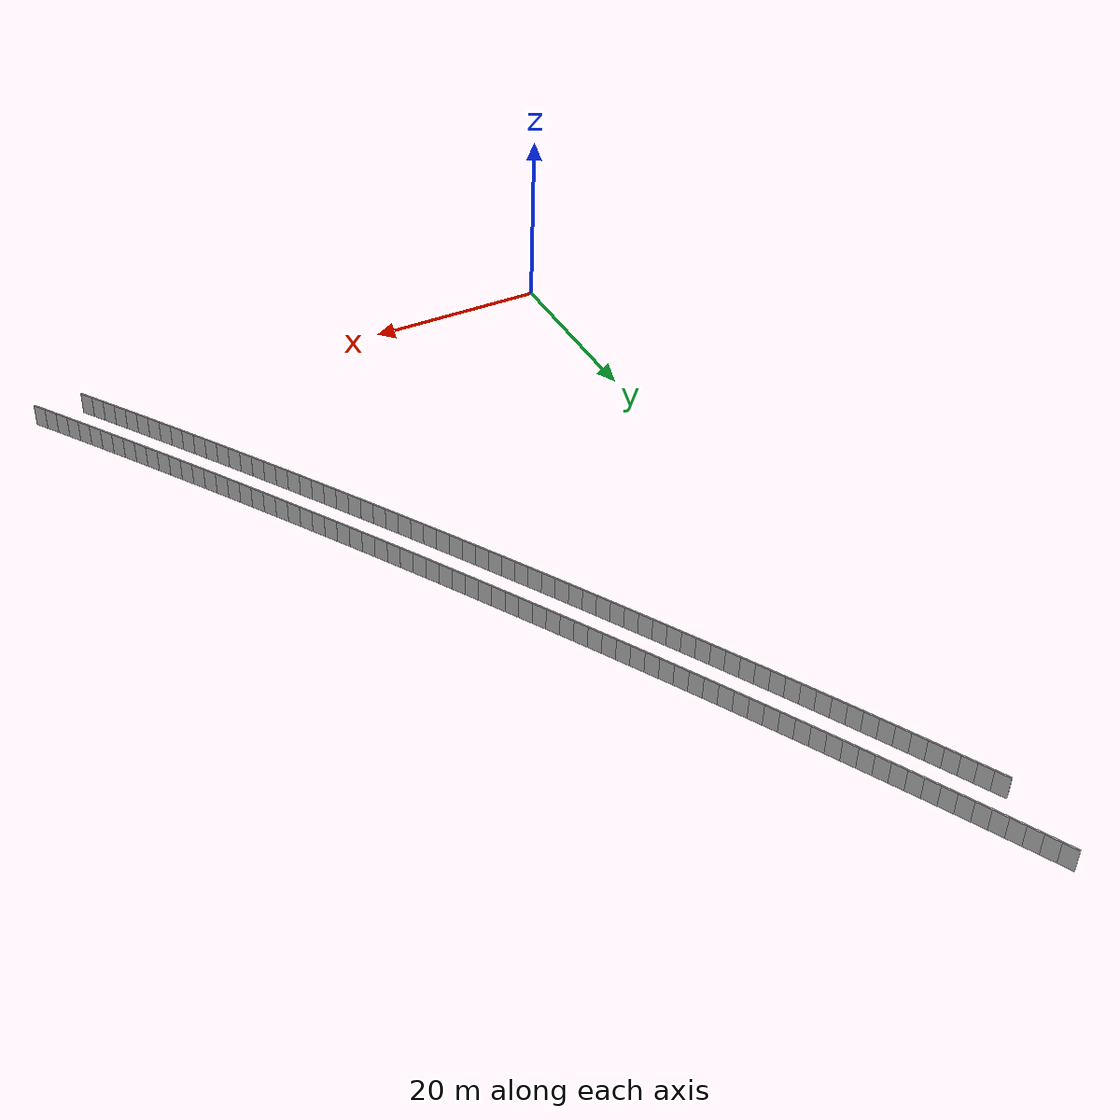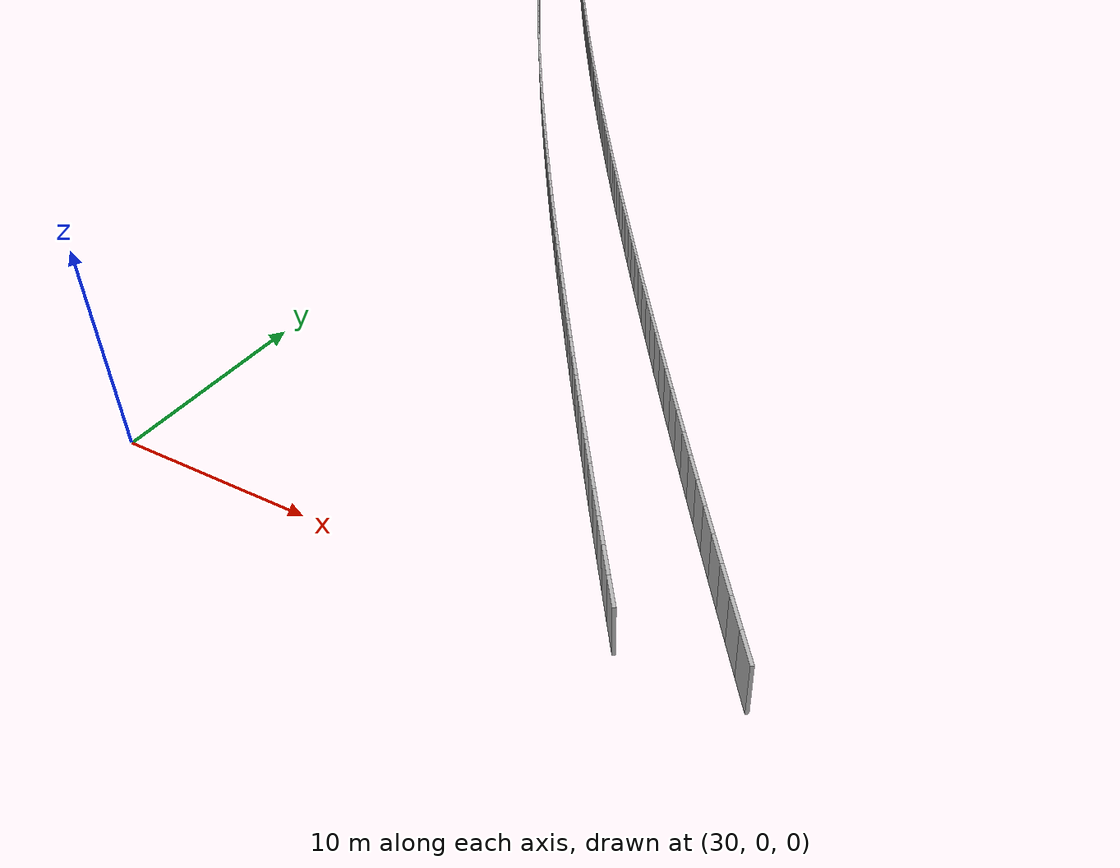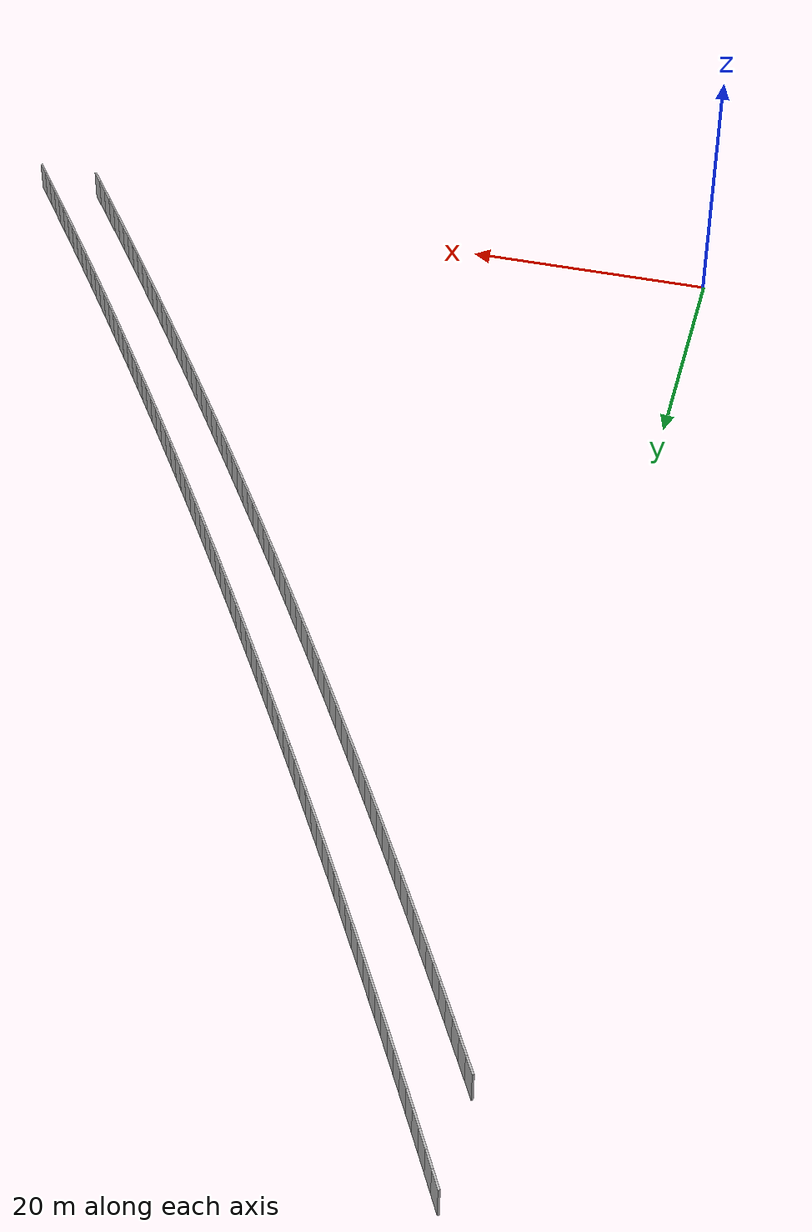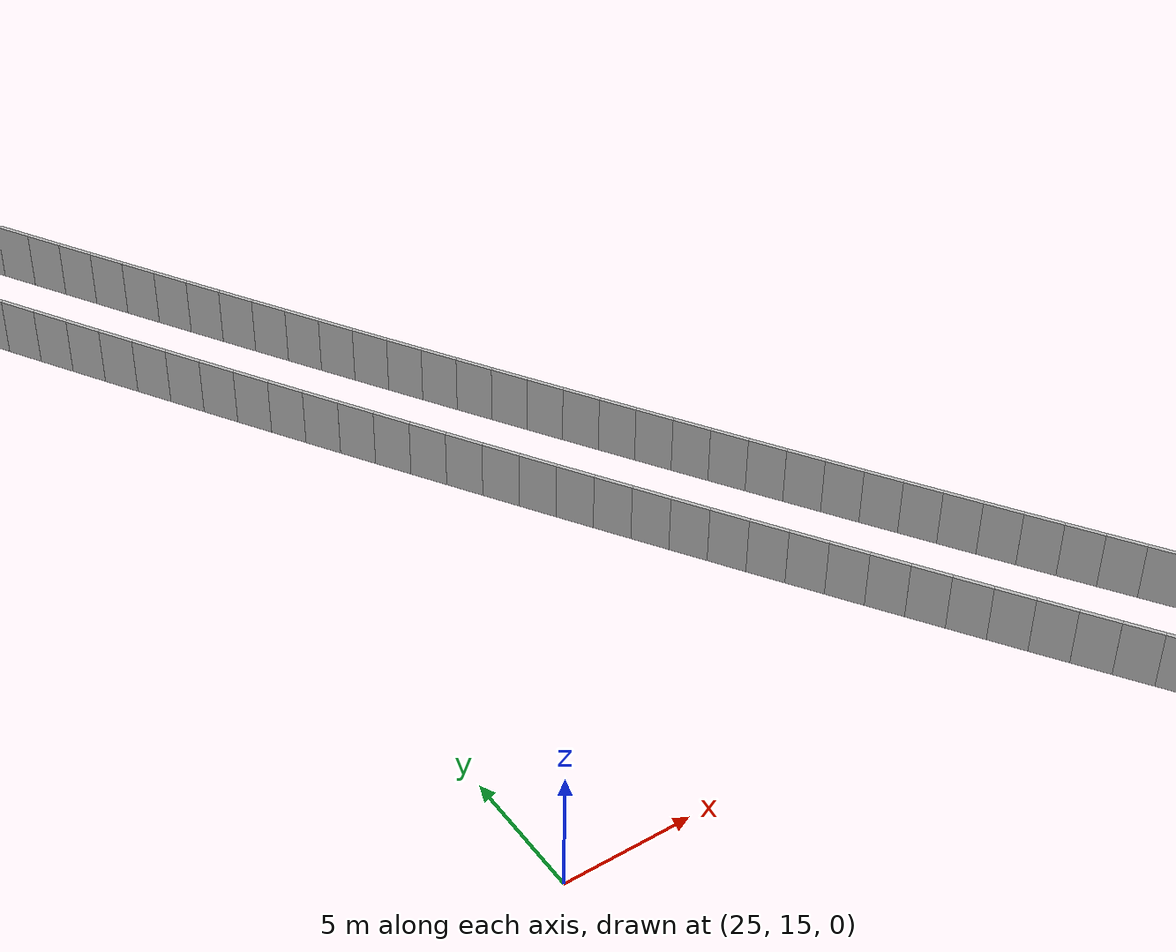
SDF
<sdf version="1.6">
 <model name="sps_0306">
  <static>1</static>
  <allow_auto_disable>0</allow_auto_disable>
  <link name="Wall8372">
   <collision name="collision"><geometry><box><size>1.49884 0.15 2.5</size></box></geometry></collision>
   <visual name="visual">
    <geometry><box><size>1.49884 0.15 2.5</size></box></geometry>
    <transparency>0.0</transparency>
   </visual>
   <pose>0.592246 86.9346 1.25 0 0 -1.0703</pose>
  </link>
  <link name="Wall8373">
   <collision name="collision"><geometry><box><size>1.49901 0.15 2.5</size></box></geometry></collision>
   <visual name="visual">
    <geometry><box><size>1.49901 0.15 2.5</size></box></geometry>
    <transparency>0.0</transparency>
   </visual>
   <pose>1.31255 85.6201 1.25 0 0 -1.06874</pose>
  </link>
  <link name="Wall8374">
   <collision name="collision"><geometry><box><size>1.49908 0.15 2.5</size></box></geometry></collision>
   <visual name="visual">
    <geometry><box><size>1.49908 0.15 2.5</size></box></geometry>
    <transparency>0.0</transparency>
   </visual>
   <pose>2.03493 84.3066 1.25 0 0 -1.06723</pose>
  </link>
  <link name="Wall8375">
   <collision name="collision"><geometry><box><size>1.49903 0.15 2.5</size></box></geometry></collision>
   <visual name="visual">
    <geometry><box><size>1.49903 0.15 2.5</size></box></geometry>
    <transparency>0.0</transparency>
   </visual>
   <pose>2.75933 82.9942 1.25 0 0 -1.06568</pose>
  </link>
  <link name="Wall8376">
   <collision name="collision"><geometry><box><size>1.49894 0.15 2.5</size></box></geometry></collision>
   <visual name="visual">
    <geometry><box><size>1.49894 0.15 2.5</size></box></geometry>
    <transparency>0.0</transparency>
   </visual>
   <pose>3.48574 81.683 1.25 0 0 -1.06411</pose>
  </link>
  <link name="Wall8377">
   <collision name="collision"><geometry><box><size>1.49894 0.15 2.5</size></box></geometry></collision>
   <visual name="visual">
    <geometry><box><size>1.49894 0.15 2.5</size></box></geometry>
    <transparency>0.0</transparency>
   </visual>
   <pose>4.21426 80.373 1.25 0 0 -1.06243</pose>
  </link>
  <link name="Wall8378">
   <collision name="collision"><geometry><box><size>1.49883 0.15 2.5</size></box></geometry></collision>
   <visual name="visual">
    <geometry><box><size>1.49883 0.15 2.5</size></box></geometry>
    <transparency>0.0</transparency>
   </visual>
   <pose>4.94485 79.0642 1.25 0 0 -1.06089</pose>
  </link>
  <link name="Wall8379">
   <collision name="collision"><geometry><box><size>1.49901 0.15 2.5</size></box></geometry></collision>
   <visual name="visual">
    <geometry><box><size>1.49901 0.15 2.5</size></box></geometry>
    <transparency>0.0</transparency>
   </visual>
   <pose>5.67763 77.7566 1.25 0 0 -1.05909</pose>
  </link>
  <link name="Wall8380">
   <collision name="collision"><geometry><box><size>1.49906 0.15 2.5</size></box></geometry></collision>
   <visual name="visual">
    <geometry><box><size>1.49906 0.15 2.5</size></box></geometry>
    <transparency>0.0</transparency>
   </visual>
   <pose>6.41256 76.4501 1.25 0 0 -1.05771</pose>
  </link>
  <link name="Wall8381">
   <collision name="collision"><geometry><box><size>1.49905 0.15 2.5</size></box></geometry></collision>
   <visual name="visual">
    <geometry><box><size>1.49905 0.15 2.5</size></box></geometry>
    <transparency>0.0</transparency>
   </visual>
   <pose>7.14947 75.1447 1.25 0 0 -1.05607</pose>
  </link>
  <link name="Wall8382">
   <collision name="collision"><geometry><box><size>1.49867 0.15 2.5</size></box></geometry></collision>
   <visual name="visual">
    <geometry><box><size>1.49867 0.15 2.5</size></box></geometry>
    <transparency>0.0</transparency>
   </visual>
   <pose>7.88836 73.8406 1.25 0 0 -1.05452</pose>
  </link>
  <link name="Wall8383">
   <collision name="collision"><geometry><box><size>1.49896 0.15 2.5</size></box></geometry></collision>
   <visual name="visual">
    <geometry><box><size>1.49896 0.15 2.5</size></box></geometry>
    <transparency>0.0</transparency>
   </visual>
   <pose>8.62926 72.5377 1.25 0 0 -1.05295</pose>
  </link>
  <link name="Wall8384">
   <collision name="collision"><geometry><box><size>1.4989 0.15 2.5</size></box></geometry></collision>
   <visual name="visual">
    <geometry><box><size>1.4989 0.15 2.5</size></box></geometry>
    <transparency>0.0</transparency>
   </visual>
   <pose>9.37228 71.2359 1.25 0 0 -1.05138</pose>
  </link>
  <link name="Wall8385">
   <collision name="collision"><geometry><box><size>1.49906 0.15 2.5</size></box></geometry></collision>
   <visual name="visual">
    <geometry><box><size>1.49906 0.15 2.5</size></box></geometry>
    <transparency>0.0</transparency>
   </visual>
   <pose>10.1174 69.9352 1.25 0 0 -1.0498</pose>
  </link>
  <link name="Wall8386">
   <collision name="collision"><geometry><box><size>1.49881 0.15 2.5</size></box></geometry></collision>
   <visual name="visual">
    <geometry><box><size>1.49881 0.15 2.5</size></box></geometry>
    <transparency>0.0</transparency>
   </visual>
   <pose>10.8644 68.6357 1.25 0 0 -1.04829</pose>
  </link>
  <link name="Wall8387">
   <collision name="collision"><geometry><box><size>1.49904 0.15 2.5</size></box></geometry></collision>
   <visual name="visual">
    <geometry><box><size>1.49904 0.15 2.5</size></box></geometry>
    <transparency>0.0</transparency>
   </visual>
   <pose>11.6135 67.3374 1.25 0 0 -1.04664</pose>
  </link>
  <link name="Wall8388">
   <collision name="collision"><geometry><box><size>1.49881 0.15 2.5</size></box></geometry></collision>
   <visual name="visual">
    <geometry><box><size>1.49881 0.15 2.5</size></box></geometry>
    <transparency>0.0</transparency>
   </visual>
   <pose>12.3648 66.0403 1.25 0 0 -1.04504</pose>
  </link>
  <link name="Wall8389">
   <collision name="collision"><geometry><box><size>1.49907 0.15 2.5</size></box></geometry></collision>
   <visual name="visual">
    <geometry><box><size>1.49907 0.15 2.5</size></box></geometry>
    <transparency>0.0</transparency>
   </visual>
   <pose>13.1181 64.7444 1.25 0 0 -1.04345</pose>
  </link>
  <link name="Wall8390">
   <collision name="collision"><geometry><box><size>1.49903 0.15 2.5</size></box></geometry></collision>
   <visual name="visual">
    <geometry><box><size>1.49903 0.15 2.5</size></box></geometry>
    <transparency>0.0</transparency>
   </visual>
   <pose>13.8735 63.4496 1.25 0 0 -1.04188</pose>
  </link>
  <link name="Wall8391">
   <collision name="collision"><geometry><box><size>1.4988 0.15 2.5</size></box></geometry></collision>
   <visual name="visual">
    <geometry><box><size>1.4988 0.15 2.5</size></box></geometry>
    <transparency>0.0</transparency>
   </visual>
   <pose>14.6309 62.1561 1.25 0 0 -1.04028</pose>
  </link>
  <link name="Wall8392">
   <collision name="collision"><geometry><box><size>1.49901 0.15 2.5</size></box></geometry></collision>
   <visual name="visual">
    <geometry><box><size>1.49901 0.15 2.5</size></box></geometry>
    <transparency>0.0</transparency>
   </visual>
   <pose>15.3903 60.8638 1.25 0 0 -1.03876</pose>
  </link>
  <link name="Wall8393">
   <collision name="collision"><geometry><box><size>1.49905 0.15 2.5</size></box></geometry></collision>
   <visual name="visual">
    <geometry><box><size>1.49905 0.15 2.5</size></box></geometry>
    <transparency>0.0</transparency>
   </visual>
   <pose>16.1518 59.5726 1.25 0 0 -1.03712</pose>
  </link>
  <link name="Wall8394">
   <collision name="collision"><geometry><box><size>1.49861 0.15 2.5</size></box></geometry></collision>
   <visual name="visual">
    <geometry><box><size>1.49861 0.15 2.5</size></box></geometry>
    <transparency>0.0</transparency>
   </visual>
   <pose>16.9152 58.2828 1.25 0 0 -1.03552</pose>
  </link>
  <link name="Wall8395">
   <collision name="collision"><geometry><box><size>1.49896 0.15 2.5</size></box></geometry></collision>
   <visual name="visual">
    <geometry><box><size>1.49896 0.15 2.5</size></box></geometry>
    <transparency>0.0</transparency>
   </visual>
   <pose>17.6807 56.9942 1.25 0 0 -1.0341</pose>
  </link>
  <link name="Wall8396">
   <collision name="collision"><geometry><box><size>1.49888 0.15 2.5</size></box></geometry></collision>
   <visual name="visual">
    <geometry><box><size>1.49888 0.15 2.5</size></box></geometry>
    <transparency>0.0</transparency>
   </visual>
   <pose>18.4482 55.7067 1.25 0 0 -1.03236</pose>
  </link>
  <link name="Wall8397">
   <collision name="collision"><geometry><box><size>1.49904 0.15 2.5</size></box></geometry></collision>
   <visual name="visual">
    <geometry><box><size>1.49904 0.15 2.5</size></box></geometry>
    <transparency>0.0</transparency>
   </visual>
   <pose>19.2178 54.4204 1.25 0 0 -1.03091</pose>
  </link>
  <link name="Wall8398">
   <collision name="collision"><geometry><box><size>1.49882 0.15 2.5</size></box></geometry></collision>
   <visual name="visual">
    <geometry><box><size>1.49882 0.15 2.5</size></box></geometry>
    <transparency>0.0</transparency>
   </visual>
   <pose>19.9893 53.1353 1.25 0 0 -1.02925</pose>
  </link>
  <link name="Wall8399">
   <collision name="collision"><geometry><box><size>1.499 0.15 2.5</size></box></geometry></collision>
   <visual name="visual">
    <geometry><box><size>1.499 0.15 2.5</size></box></geometry>
    <transparency>0.0</transparency>
   </visual>
   <pose>20.7631 51.8515 1.25 0 0 -1.02756</pose>
  </link>
  <link name="Wall8400">
   <collision name="collision"><geometry><box><size>1.49892 0.15 2.5</size></box></geometry></collision>
   <visual name="visual">
    <geometry><box><size>1.49892 0.15 2.5</size></box></geometry>
    <transparency>0.0</transparency>
   </visual>
   <pose>21.5388 50.5689 1.25 0 0 -1.02615</pose>
  </link>
  <link name="Wall8401">
   <collision name="collision"><geometry><box><size>1.49893 0.15 2.5</size></box></geometry></collision>
   <visual name="visual">
    <geometry><box><size>1.49893 0.15 2.5</size></box></geometry>
    <transparency>0.0</transparency>
   </visual>
   <pose>22.3165 49.2875 1.25 0 0 -1.02449</pose>
  </link>
  <link name="Wall8402">
   <collision name="collision"><geometry><box><size>1.49887 0.15 2.5</size></box></geometry></collision>
   <visual name="visual">
    <geometry><box><size>1.49887 0.15 2.5</size></box></geometry>
    <transparency>0.0</transparency>
   </visual>
   <pose>23.0962 48.0074 1.25 0 0 -1.02284</pose>
  </link>
  <link name="Wall8403">
   <collision name="collision"><geometry><box><size>1.49921 0.15 2.5</size></box></geometry></collision>
   <visual name="visual">
    <geometry><box><size>1.49921 0.15 2.5</size></box></geometry>
    <transparency>0.0</transparency>
   </visual>
   <pose>23.878 46.7284 1.25 0 0 -1.02145</pose>
  </link>
  <link name="Wall8404">
   <collision name="collision"><geometry><box><size>1.49876 0.15 2.5</size></box></geometry></collision>
   <visual name="visual">
    <geometry><box><size>1.49876 0.15 2.5</size></box></geometry>
    <transparency>0.0</transparency>
   </visual>
   <pose>24.6617 45.4506 1.25 0 0 -1.01984</pose>
  </link>
  <link name="Wall8405">
   <collision name="collision"><geometry><box><size>1.49892 0.15 2.5</size></box></geometry></collision>
   <visual name="visual">
    <geometry><box><size>1.49892 0.15 2.5</size></box></geometry>
    <transparency>0.0</transparency>
   </visual>
   <pose>25.4474 44.1742 1.25 0 0 -1.01818</pose>
  </link>
  <link name="Wall8406">
   <collision name="collision"><geometry><box><size>1.49904 0.15 2.5</size></box></geometry></collision>
   <visual name="visual">
    <geometry><box><size>1.49904 0.15 2.5</size></box></geometry>
    <transparency>0.0</transparency>
   </visual>
   <pose>26.2353 42.899 1.25 0 0 -1.01651</pose>
  </link>
  <link name="Wall8407">
   <collision name="collision"><geometry><box><size>1.49897 0.15 2.5</size></box></geometry></collision>
   <visual name="visual">
    <geometry><box><size>1.49897 0.15 2.5</size></box></geometry>
    <transparency>0.0</transparency>
   </visual>
   <pose>27.0253 41.625 1.25 0 0 -1.01504</pose>
  </link>
  <link name="Wall8408">
   <collision name="collision"><geometry><box><size>1.49901 0.15 2.5</size></box></geometry></collision>
   <visual name="visual">
    <geometry><box><size>1.49901 0.15 2.5</size></box></geometry>
    <transparency>0.0</transparency>
   </visual>
   <pose>27.8171 40.3522 1.25 0 0 -1.01353</pose>
  </link>
  <link name="Wall8409">
   <collision name="collision"><geometry><box><size>1.49889 0.15 2.5</size></box></geometry></collision>
   <visual name="visual">
    <geometry><box><size>1.49889 0.15 2.5</size></box></geometry>
    <transparency>0.0</transparency>
   </visual>
   <pose>28.6109 39.0807 1.25 0 0 -1.01189</pose>
  </link>
  <link name="Wall8410">
   <collision name="collision"><geometry><box><size>1.49893 0.15 2.5</size></box></geometry></collision>
   <visual name="visual">
    <geometry><box><size>1.49893 0.15 2.5</size></box></geometry>
    <transparency>0.0</transparency>
   </visual>
   <pose>29.4067 37.8105 1.25 0 0 -1.01032</pose>
  </link>
  <link name="Wall8411">
   <collision name="collision"><geometry><box><size>1.49878 0.15 2.5</size></box></geometry></collision>
   <visual name="visual">
    <geometry><box><size>1.49878 0.15 2.5</size></box></geometry>
    <transparency>0.0</transparency>
   </visual>
   <pose>30.2045 36.5416 1.25 0 0 -1.00872</pose>
  </link>
  <link name="Wall8412">
   <collision name="collision"><geometry><box><size>1.49906 0.15 2.5</size></box></geometry></collision>
   <visual name="visual">
    <geometry><box><size>1.49906 0.15 2.5</size></box></geometry>
    <transparency>0.0</transparency>
   </visual>
   <pose>31.0043 35.2739 1.25 0 0 -1.0072</pose>
  </link>
  <link name="Wall8413">
   <collision name="collision"><geometry><box><size>1.49901 0.15 2.5</size></box></geometry></collision>
   <visual name="visual">
    <geometry><box><size>1.49901 0.15 2.5</size></box></geometry>
    <transparency>0.0</transparency>
   </visual>
   <pose>31.8062 34.0074 1.25 0 0 -1.00549</pose>
  </link>
  <link name="Wall8414">
   <collision name="collision"><geometry><box><size>1.49897 0.15 2.5</size></box></geometry></collision>
   <visual name="visual">
    <geometry><box><size>1.49897 0.15 2.5</size></box></geometry>
    <transparency>0.0</transparency>
   </visual>
   <pose>32.6101 32.7422 1.25 0 0 -1.00403</pose>
  </link>
  <link name="Wall8415">
   <collision name="collision"><geometry><box><size>1.49883 0.15 2.5</size></box></geometry></collision>
   <visual name="visual">
    <geometry><box><size>1.49883 0.15 2.5</size></box></geometry>
    <transparency>0.0</transparency>
   </visual>
   <pose>33.4159 31.4783 1.25 0 0 -1.00242</pose>
  </link>
  <link name="Wall8416">
   <collision name="collision"><geometry><box><size>1.49907 0.15 2.5</size></box></geometry></collision>
   <visual name="visual">
    <geometry><box><size>1.49907 0.15 2.5</size></box></geometry>
    <transparency>0.0</transparency>
   </visual>
   <pose>34.2237 30.2157 1.25 0 0 -1.00074</pose>
  </link>
  <link name="Wall8417">
   <collision name="collision"><geometry><box><size>1.4988 0.15 2.5</size></box></geometry></collision>
   <visual name="visual">
    <geometry><box><size>1.4988 0.15 2.5</size></box></geometry>
    <transparency>0.0</transparency>
   </visual>
   <pose>35.0337 28.9544 1.25 0 0 -0.999217</pose>
  </link>
  <link name="Wall8418">
   <collision name="collision"><geometry><box><size>1.49901 0.15 2.5</size></box></geometry></collision>
   <visual name="visual">
    <geometry><box><size>1.49901 0.15 2.5</size></box></geometry>
    <transparency>0.0</transparency>
   </visual>
   <pose>35.8455 27.6944 1.25 0 0 -0.997565</pose>
  </link>
  <link name="Wall8419">
   <collision name="collision"><geometry><box><size>1.49903 0.15 2.5</size></box></geometry></collision>
   <visual name="visual">
    <geometry><box><size>1.49903 0.15 2.5</size></box></geometry>
    <transparency>0.0</transparency>
   </visual>
   <pose>36.6594 26.4356 1.25 0 0 -0.996119</pose>
  </link>
  <link name="Wall8420">
   <collision name="collision"><geometry><box><size>1.49887 0.15 2.5</size></box></geometry></collision>
   <visual name="visual">
    <geometry><box><size>1.49887 0.15 2.5</size></box></geometry>
    <transparency>0.0</transparency>
   </visual>
   <pose>37.4752 25.1781 1.25 0 0 -0.994495</pose>
  </link>
  <link name="Wall8421">
   <collision name="collision"><geometry><box><size>1.49854 0.15 2.5</size></box></geometry></collision>
   <visual name="visual">
    <geometry><box><size>1.49854 0.15 2.5</size></box></geometry>
    <transparency>0.0</transparency>
   </visual>
   <pose>38.2929 23.9221 1.25 0 0 -0.992893</pose>
  </link>
  <link name="Wall8422">
   <collision name="collision"><geometry><box><size>1.49892 0.15 2.5</size></box></geometry></collision>
   <visual name="visual">
    <geometry><box><size>1.49892 0.15 2.5</size></box></geometry>
    <transparency>0.0</transparency>
   </visual>
   <pose>39.1126 22.6674 1.25 0 0 -0.991309</pose>
  </link>
  <link name="Wall8423">
   <collision name="collision"><geometry><box><size>1.4989 0.15 2.5</size></box></geometry></collision>
   <visual name="visual">
    <geometry><box><size>1.4989 0.15 2.5</size></box></geometry>
    <transparency>0.0</transparency>
   </visual>
   <pose>39.9343 21.4138 1.25 0 0 -0.989841</pose>
  </link>
  <link name="Wall8424">
   <collision name="collision"><geometry><box><size>1.4989 0.15 2.5</size></box></geometry></collision>
   <visual name="visual">
    <geometry><box><size>1.4989 0.15 2.5</size></box></geometry>
    <transparency>0.0</transparency>
   </visual>
   <pose>40.758 20.1615 1.25 0 0 -0.988136</pose>
  </link>
  <link name="Wall8425">
   <collision name="collision"><geometry><box><size>1.49908 0.15 2.5</size></box></geometry></collision>
   <visual name="visual">
    <geometry><box><size>1.49908 0.15 2.5</size></box></geometry>
    <transparency>0.0</transparency>
   </visual>
   <pose>41.5839 18.9105 1.25 0 0 -0.986554</pose>
  </link>
  <link name="Wall8426">
   <collision name="collision"><geometry><box><size>1.49885 0.15 2.5</size></box></geometry></collision>
   <visual name="visual">
    <geometry><box><size>1.49885 0.15 2.5</size></box></geometry>
    <transparency>0.0</transparency>
   </visual>
   <pose>42.4116 17.6608 1.25 0 0 -0.985086</pose>
  </link>
  <link name="Wall8427">
   <collision name="collision"><geometry><box><size>1.49888 0.15 2.5</size></box></geometry></collision>
   <visual name="visual">
    <geometry><box><size>1.49888 0.15 2.5</size></box></geometry>
    <transparency>0.0</transparency>
   </visual>
   <pose>43.2412 16.4125 1.25 0 0 -0.983291</pose>
  </link>
  <link name="Wall8428">
   <collision name="collision"><geometry><box><size>1.49893 0.15 2.5</size></box></geometry></collision>
   <visual name="visual">
    <geometry><box><size>1.49893 0.15 2.5</size></box></geometry>
    <transparency>0.0</transparency>
   </visual>
   <pose>44.073 15.1655 1.25 0 0 -0.981845</pose>
  </link>
  <link name="Wall8429">
   <collision name="collision"><geometry><box><size>1.49906 0.15 2.5</size></box></geometry></collision>
   <visual name="visual">
    <geometry><box><size>1.49906 0.15 2.5</size></box></geometry>
    <transparency>0.0</transparency>
   </visual>
   <pose>44.9066 13.9197 1.25 0 0 -0.980332</pose>
  </link>
  <link name="Wall8430">
   <collision name="collision"><geometry><box><size>1.49881 0.15 2.5</size></box></geometry></collision>
   <visual name="visual">
    <geometry><box><size>1.49881 0.15 2.5</size></box></geometry>
    <transparency>0.0</transparency>
   </visual>
   <pose>45.7422 12.6753 1.25 0 0 -0.978604</pose>
  </link>
  <link name="Wall8431">
   <collision name="collision"><geometry><box><size>1.49924 0.15 2.5</size></box></geometry></collision>
   <visual name="visual">
    <geometry><box><size>1.49924 0.15 2.5</size></box></geometry>
    <transparency>0.0</transparency>
   </visual>
   <pose>46.5798 11.4321 1.25 0 0 -0.977227</pose>
  </link>
  <link name="Wall8432">
   <collision name="collision"><geometry><box><size>1.49895 0.15 2.5</size></box></geometry></collision>
   <visual name="visual">
    <geometry><box><size>1.49895 0.15 2.5</size></box></geometry>
    <transparency>0.0</transparency>
   </visual>
   <pose>47.4192 10.1901 1.25 0 0 -0.975622</pose>
  </link>
  <link name="Wall8433">
   <collision name="collision"><geometry><box><size>1.49903 0.15 2.5</size></box></geometry></collision>
   <visual name="visual">
    <geometry><box><size>1.49903 0.15 2.5</size></box></geometry>
    <transparency>0.0</transparency>
   </visual>
   <pose>48.2607 8.94957 1.25 0 0 -0.973884</pose>
  </link>
  <link name="Wall8434">
   <collision name="collision"><geometry><box><size>1.49885 0.15 2.5</size></box></geometry></collision>
   <visual name="visual">
    <geometry><box><size>1.49885 0.15 2.5</size></box></geometry>
    <transparency>0.0</transparency>
   </visual>
   <pose>49.1042 7.71049 1.25 0 0 -0.972324</pose>
  </link>
  <link name="Wall8435">
   <collision name="collision"><geometry><box><size>1.49894 0.15 2.5</size></box></geometry></collision>
   <visual name="visual">
    <geometry><box><size>1.49894 0.15 2.5</size></box></geometry>
    <transparency>0.0</transparency>
   </visual>
   <pose>49.9495 6.4727 1.25 0 0 -0.970935</pose>
  </link>
  <link name="Wall8436">
   <collision name="collision"><geometry><box><size>1.49897 0.15 2.5</size></box></geometry></collision>
   <visual name="visual">
    <geometry><box><size>1.49897 0.15 2.5</size></box></geometry>
    <transparency>0.0</transparency>
   </visual>
   <pose>50.7968 5.23619 1.25 0 0 -0.969174</pose>
  </link>
  <link name="Wall8437">
   <collision name="collision"><geometry><box><size>1.49901 0.15 2.5</size></box></geometry></collision>
   <visual name="visual">
    <geometry><box><size>1.49901 0.15 2.5</size></box></geometry>
    <transparency>0.0</transparency>
   </visual>
   <pose>51.6462 4.00108 1.25 0 0 -0.967559</pose>
  </link>
  <link name="Wall8438">
   <collision name="collision"><geometry><box><size>1.49899 0.15 2.5</size></box></geometry></collision>
   <visual name="visual">
    <geometry><box><size>1.49899 0.15 2.5</size></box></geometry>
    <transparency>0.0</transparency>
   </visual>
   <pose>52.4976 2.76729 1.25 0 0 -0.966068</pose>
  </link>
  <link name="Wall8439">
   <collision name="collision"><geometry><box><size>1.49885 0.15 2.5</size></box></geometry></collision>
   <visual name="visual">
    <geometry><box><size>1.49885 0.15 2.5</size></box></geometry>
    <transparency>0.0</transparency>
   </visual>
   <pose>53.3508 1.5349 1.25 0 0 -0.964417</pose>
  </link>
  <link name="Wall8440">
   <collision name="collision"><geometry><box><size>1.49889 0.15 2.5</size></box></geometry></collision>
   <visual name="visual">
    <geometry><box><size>1.49889 0.15 2.5</size></box></geometry>
    <transparency>0.0</transparency>
   </visual>
   <pose>54.2059 0.303878 1.25 0 0 -0.962949</pose>
  </link>
  <link name="Wall9448">
   <collision name="collision"><geometry><box><size>1.49239 0.15 2.5</size></box></geometry></collision>
   <visual name="visual">
    <geometry><box><size>1.49239 0.15 2.5</size></box></geometry>
    <transparency>0.0</transparency>
   </visual>
   <pose>0.669944 95.4822 1.25 0 0 -1.07817</pose>
  </link>
  <link name="Wall9449">
   <collision name="collision"><geometry><box><size>1.49243 0.15 2.5</size></box></geometry></collision>
   <visual name="visual">
    <geometry><box><size>1.49243 0.15 2.5</size></box></geometry>
    <transparency>0.0</transparency>
   </visual>
   <pose>1.37664 94.1677 1.25 0 0 -1.07684</pose>
  </link>
  <link name="Wall9450">
   <collision name="collision"><geometry><box><size>1.49267 0.15 2.5</size></box></geometry></collision>
   <visual name="visual">
    <geometry><box><size>1.49267 0.15 2.5</size></box></geometry>
    <transparency>0.0</transparency>
   </visual>
   <pose>2.08544 92.8542 1.25 0 0 -1.07507</pose>
  </link>
  <link name="Wall9451">
   <collision name="collision"><geometry><box><size>1.49196 0.15 2.5</size></box></geometry></collision>
   <visual name="visual">
    <geometry><box><size>1.49196 0.15 2.5</size></box></geometry>
    <transparency>0.0</transparency>
   </visual>
   <pose>2.79635 91.5421 1.25 0 0 -1.07346</pose>
  </link>
  <link name="Wall9452">
   <collision name="collision"><geometry><box><size>1.49247 0.15 2.5</size></box></geometry></collision>
   <visual name="visual">
    <geometry><box><size>1.49247 0.15 2.5</size></box></geometry>
    <transparency>0.0</transparency>
   </visual>
   <pose>3.50924 90.2312 1.25 0 0 -1.07197</pose>
  </link>
  <link name="Wall9453">
   <collision name="collision"><geometry><box><size>1.49232 0.15 2.5</size></box></geometry></collision>
   <visual name="visual">
    <geometry><box><size>1.49232 0.15 2.5</size></box></geometry>
    <transparency>0.0</transparency>
   </visual>
   <pose>4.22436 88.9213 1.25 0 0 -1.07019</pose>
  </link>
  <link name="Wall9454">
   <collision name="collision"><geometry><box><size>1.49257 0.15 2.5</size></box></geometry></collision>
   <visual name="visual">
    <geometry><box><size>1.49257 0.15 2.5</size></box></geometry>
    <transparency>0.0</transparency>
   </visual>
   <pose>4.94158 87.6125 1.25 0 0 -1.06879</pose>
  </link>
  <link name="Wall9455">
   <collision name="collision"><geometry><box><size>1.49222 0.15 2.5</size></box></geometry></collision>
   <visual name="visual">
    <geometry><box><size>1.49222 0.15 2.5</size></box></geometry>
    <transparency>0.0</transparency>
   </visual>
   <pose>5.66076 86.3048 1.25 0 0 -1.06717</pose>
  </link>
  <link name="Wall9456">
   <collision name="collision"><geometry><box><size>1.49235 0.15 2.5</size></box></geometry></collision>
   <visual name="visual">
    <geometry><box><size>1.49235 0.15 2.5</size></box></geometry>
    <transparency>0.0</transparency>
   </visual>
   <pose>6.38204 84.9984 1.25 0 0 -1.06549</pose>
  </link>
  <link name="Wall9457">
   <collision name="collision"><geometry><box><size>1.49246 0.15 2.5</size></box></geometry></collision>
   <visual name="visual">
    <geometry><box><size>1.49246 0.15 2.5</size></box></geometry>
    <transparency>0.0</transparency>
   </visual>
   <pose>7.10534 83.693 1.25 0 0 -1.06417</pose>
  </link>
  <link name="Wall9458">
   <collision name="collision"><geometry><box><size>1.49242 0.15 2.5</size></box></geometry></collision>
   <visual name="visual">
    <geometry><box><size>1.49242 0.15 2.5</size></box></geometry>
    <transparency>0.0</transparency>
   </visual>
   <pose>7.83074 82.3887 1.25 0 0 -1.06229</pose>
  </link>
  <link name="Wall9459">
   <collision name="collision"><geometry><box><size>1.49243 0.15 2.5</size></box></geometry></collision>
   <visual name="visual">
    <geometry><box><size>1.49243 0.15 2.5</size></box></geometry>
    <transparency>0.0</transparency>
   </visual>
   <pose>8.55825 81.0856 1.25 0 0 -1.06093</pose>
  </link>
  <link name="Wall9460">
   <collision name="collision"><geometry><box><size>1.49244 0.15 2.5</size></box></geometry></collision>
   <visual name="visual">
    <geometry><box><size>1.49244 0.15 2.5</size></box></geometry>
    <transparency>0.0</transparency>
   </visual>
   <pose>9.28774 79.7836 1.25 0 0 -1.05925</pose>
  </link>
  <link name="Wall9461">
   <collision name="collision"><geometry><box><size>1.49228 0.15 2.5</size></box></geometry></collision>
   <visual name="visual">
    <geometry><box><size>1.49228 0.15 2.5</size></box></geometry>
    <transparency>0.0</transparency>
   </visual>
   <pose>10.0192 78.4828 1.25 0 0 -1.05778</pose>
  </link>
  <link name="Wall9462">
   <collision name="collision"><geometry><box><size>1.49251 0.15 2.5</size></box></geometry></collision>
   <visual name="visual">
    <geometry><box><size>1.49251 0.15 2.5</size></box></geometry>
    <transparency>0.0</transparency>
   </visual>
   <pose>10.7528 77.1831 1.25 0 0 -1.05617</pose>
  </link>
  <link name="Wall9463">
   <collision name="collision"><geometry><box><size>1.49239 0.15 2.5</size></box></geometry></collision>
   <visual name="visual">
    <geometry><box><size>1.49239 0.15 2.5</size></box></geometry>
    <transparency>0.0</transparency>
   </visual>
   <pose>11.4885 75.8846 1.25 0 0 -1.05449</pose>
  </link>
  <link name="Wall9464">
   <collision name="collision"><geometry><box><size>1.49246 0.15 2.5</size></box></geometry></collision>
   <visual name="visual">
    <geometry><box><size>1.49246 0.15 2.5</size></box></geometry>
    <transparency>0.0</transparency>
   </visual>
   <pose>12.2262 74.5873 1.25 0 0 -1.05291</pose>
  </link>
  <link name="Wall9465">
   <collision name="collision"><geometry><box><size>1.49257 0.15 2.5</size></box></geometry></collision>
   <visual name="visual">
    <geometry><box><size>1.49257 0.15 2.5</size></box></geometry>
    <transparency>0.0</transparency>
   </visual>
   <pose>12.9661 73.2911 1.25 0 0 -1.05131</pose>
  </link>
  <link name="Wall9466">
   <collision name="collision"><geometry><box><size>1.4922 0.15 2.5</size></box></geometry></collision>
   <visual name="visual">
    <geometry><box><size>1.4922 0.15 2.5</size></box></geometry>
    <transparency>0.0</transparency>
   </visual>
   <pose>13.708 71.9962 1.25 0 0 -1.04975</pose>
  </link>
  <link name="Wall9467">
   <collision name="collision"><geometry><box><size>1.49231 0.15 2.5</size></box></geometry></collision>
   <visual name="visual">
    <geometry><box><size>1.49231 0.15 2.5</size></box></geometry>
    <transparency>0.0</transparency>
   </visual>
   <pose>14.4518 70.7025 1.25 0 0 -1.04824</pose>
  </link>
  <link name="Wall9468">
   <collision name="collision"><geometry><box><size>1.49246 0.15 2.5</size></box></geometry></collision>
   <visual name="visual">
    <geometry><box><size>1.49246 0.15 2.5</size></box></geometry>
    <transparency>0.0</transparency>
   </visual>
   <pose>15.1977 69.4099 1.25 0 0 -1.04659</pose>
  </link>
  <link name="Wall9469">
   <collision name="collision"><geometry><box><size>1.49239 0.15 2.5</size></box></geometry></collision>
   <visual name="visual">
    <geometry><box><size>1.49239 0.15 2.5</size></box></geometry>
    <transparency>0.0</transparency>
   </visual>
   <pose>15.9456 68.1184 1.25 0 0 -1.0452</pose>
  </link>
  <link name="Wall9470">
   <collision name="collision"><geometry><box><size>1.49237 0.15 2.5</size></box></geometry></collision>
   <visual name="visual">
    <geometry><box><size>1.49237 0.15 2.5</size></box></geometry>
    <transparency>0.0</transparency>
   </visual>
   <pose>16.6955 66.8281 1.25 0 0 -1.04344</pose>
  </link>
  <link name="Wall9471">
   <collision name="collision"><geometry><box><size>1.49251 0.15 2.5</size></box></geometry></collision>
   <visual name="visual">
    <geometry><box><size>1.49251 0.15 2.5</size></box></geometry>
    <transparency>0.0</transparency>
   </visual>
   <pose>17.4476 65.539 1.25 0 0 -1.04198</pose>
  </link>
  <link name="Wall9472">
   <collision name="collision"><geometry><box><size>1.49235 0.15 2.5</size></box></geometry></collision>
   <visual name="visual">
    <geometry><box><size>1.49235 0.15 2.5</size></box></geometry>
    <transparency>0.0</transparency>
   </visual>
   <pose>18.2017 64.2511 1.25 0 0 -1.04021</pose>
  </link>
  <link name="Wall9473">
   <collision name="collision"><geometry><box><size>1.49237 0.15 2.5</size></box></geometry></collision>
   <visual name="visual">
    <geometry><box><size>1.49237 0.15 2.5</size></box></geometry>
    <transparency>0.0</transparency>
   </visual>
   <pose>18.9578 62.9645 1.25 0 0 -1.03865</pose>
  </link>
  <link name="Wall9474">
   <collision name="collision"><geometry><box><size>1.4925 0.15 2.5</size></box></geometry></collision>
   <visual name="visual">
    <geometry><box><size>1.4925 0.15 2.5</size></box></geometry>
    <transparency>0.0</transparency>
   </visual>
   <pose>19.7161 61.679 1.25 0 0 -1.03714</pose>
  </link>
  <link name="Wall9475">
   <collision name="collision"><geometry><box><size>1.49225 0.15 2.5</size></box></geometry></collision>
   <visual name="visual">
    <geometry><box><size>1.49225 0.15 2.5</size></box></geometry>
    <transparency>0.0</transparency>
   </visual>
   <pose>20.4762 60.3947 1.25 0 0 -1.03566</pose>
  </link>
  <link name="Wall9476">
   <collision name="collision"><geometry><box><size>1.49232 0.15 2.5</size></box></geometry></collision>
   <visual name="visual">
    <geometry><box><size>1.49232 0.15 2.5</size></box></geometry>
    <transparency>0.0</transparency>
   </visual>
   <pose>21.2382 59.1117 1.25 0 0 -1.03398</pose>
  </link>
  <link name="Wall9477">
   <collision name="collision"><geometry><box><size>1.49215 0.15 2.5</size></box></geometry></collision>
   <visual name="visual">
    <geometry><box><size>1.49215 0.15 2.5</size></box></geometry>
    <transparency>0.0</transparency>
   </visual>
   <pose>22.0024 57.83 1.25 0 0 -1.03233</pose>
  </link>
  <link name="Wall9478">
   <collision name="collision"><geometry><box><size>1.49245 0.15 2.5</size></box></geometry></collision>
   <visual name="visual">
    <geometry><box><size>1.49245 0.15 2.5</size></box></geometry>
    <transparency>0.0</transparency>
   </visual>
   <pose>22.7686 56.5494 1.25 0 0 -1.03088</pose>
  </link>
  <link name="Wall9479">
   <collision name="collision"><geometry><box><size>1.49254 0.15 2.5</size></box></geometry></collision>
   <visual name="visual">
    <geometry><box><size>1.49254 0.15 2.5</size></box></geometry>
    <transparency>0.0</transparency>
   </visual>
   <pose>23.5369 55.2698 1.25 0 0 -1.02935</pose>
  </link>
  <link name="Wall9480">
   <collision name="collision"><geometry><box><size>1.49255 0.15 2.5</size></box></geometry></collision>
   <visual name="visual">
    <geometry><box><size>1.49255 0.15 2.5</size></box></geometry>
    <transparency>0.0</transparency>
   </visual>
   <pose>24.3072 53.9914 1.25 0 0 -1.02768</pose>
  </link>
  <link name="Wall9481">
   <collision name="collision"><geometry><box><size>1.49247 0.15 2.5</size></box></geometry></collision>
   <visual name="visual">
    <geometry><box><size>1.49247 0.15 2.5</size></box></geometry>
    <transparency>0.0</transparency>
   </visual>
   <pose>25.0796 52.7143 1.25 0 0 -1.02602</pose>
  </link>
  <link name="Wall9482">
   <collision name="collision"><geometry><box><size>1.49239 0.15 2.5</size></box></geometry></collision>
   <visual name="visual">
    <geometry><box><size>1.49239 0.15 2.5</size></box></geometry>
    <transparency>0.0</transparency>
   </visual>
   <pose>25.854 51.4385 1.25 0 0 -1.02446</pose>
  </link>
  <link name="Wall9483">
   <collision name="collision"><geometry><box><size>1.4924 0.15 2.5</size></box></geometry></collision>
   <visual name="visual">
    <geometry><box><size>1.4924 0.15 2.5</size></box></geometry>
    <transparency>0.0</transparency>
   </visual>
   <pose>26.6303 50.1639 1.25 0 0 -1.02303</pose>
  </link>
  <link name="Wall9484">
   <collision name="collision"><geometry><box><size>1.49242 0.15 2.5</size></box></geometry></collision>
   <visual name="visual">
    <geometry><box><size>1.49242 0.15 2.5</size></box></geometry>
    <transparency>0.0</transparency>
   </visual>
   <pose>27.4086 48.8905 1.25 0 0 -1.02136</pose>
  </link>
  <link name="Wall9485">
   <collision name="collision"><geometry><box><size>1.49237 0.15 2.5</size></box></geometry></collision>
   <visual name="visual">
    <geometry><box><size>1.49237 0.15 2.5</size></box></geometry>
    <transparency>0.0</transparency>
   </visual>
   <pose>28.189 47.6184 1.25 0 0 -1.0197</pose>
  </link>
  <link name="Wall9486">
   <collision name="collision"><geometry><box><size>1.49251 0.15 2.5</size></box></geometry></collision>
   <visual name="visual">
    <geometry><box><size>1.49251 0.15 2.5</size></box></geometry>
    <transparency>0.0</transparency>
   </visual>
   <pose>28.9714 46.3475 1.25 0 0 -1.01822</pose>
  </link>
  <link name="Wall9487">
   <collision name="collision"><geometry><box><size>1.49237 0.15 2.5</size></box></geometry></collision>
   <visual name="visual">
    <geometry><box><size>1.49237 0.15 2.5</size></box></geometry>
    <transparency>0.0</transparency>
   </visual>
   <pose>29.7558 45.0778 1.25 0 0 -1.01658</pose>
  </link>
  <link name="Wall9488">
   <collision name="collision"><geometry><box><size>1.49216 0.15 2.5</size></box></geometry></collision>
   <visual name="visual">
    <geometry><box><size>1.49216 0.15 2.5</size></box></geometry>
    <transparency>0.0</transparency>
   </visual>
   <pose>30.542 43.8095 1.25 0 0 -1.0151</pose>
  </link>
  <link name="Wall9489">
   <collision name="collision"><geometry><box><size>1.49247 0.15 2.5</size></box></geometry></collision>
   <visual name="visual">
    <geometry><box><size>1.49247 0.15 2.5</size></box></geometry>
    <transparency>0.0</transparency>
   </visual>
   <pose>31.3303 42.5424 1.25 0 0 -1.01345</pose>
  </link>
  <link name="Wall9490">
   <collision name="collision"><geometry><box><size>1.49232 0.15 2.5</size></box></geometry></collision>
   <visual name="visual">
    <geometry><box><size>1.49232 0.15 2.5</size></box></geometry>
    <transparency>0.0</transparency>
   </visual>
   <pose>32.1207 41.2765 1.25 0 0 -1.01184</pose>
  </link>
  <link name="Wall9491">
   <collision name="collision"><geometry><box><size>1.49251 0.15 2.5</size></box></geometry></collision>
   <visual name="visual">
    <geometry><box><size>1.49251 0.15 2.5</size></box></geometry>
    <transparency>0.0</transparency>
   </visual>
   <pose>32.9131 40.0118 1.25 0 0 -1.01032</pose>
  </link>
  <link name="Wall9492">
   <collision name="collision"><geometry><box><size>1.49235 0.15 2.5</size></box></geometry></collision>
   <visual name="visual">
    <geometry><box><size>1.49235 0.15 2.5</size></box></geometry>
    <transparency>0.0</transparency>
   </visual>
   <pose>33.7075 38.7483 1.25 0 0 -1.00881</pose>
  </link>
  <link name="Wall9493">
   <collision name="collision"><geometry><box><size>1.49245 0.15 2.5</size></box></geometry></collision>
   <visual name="visual">
    <geometry><box><size>1.49245 0.15 2.5</size></box></geometry>
    <transparency>0.0</transparency>
   </visual>
   <pose>34.5037 37.4861 1.25 0 0 -1.00716</pose>
  </link>
  <link name="Wall9494">
   <collision name="collision"><geometry><box><size>1.49238 0.15 2.5</size></box></geometry></collision>
   <visual name="visual">
    <geometry><box><size>1.49238 0.15 2.5</size></box></geometry>
    <transparency>0.0</transparency>
   </visual>
   <pose>35.3021 36.2252 1.25 0 0 -1.00548</pose>
  </link>
  <link name="Wall9495">
   <collision name="collision"><geometry><box><size>1.49245 0.15 2.5</size></box></geometry></collision>
   <visual name="visual">
    <geometry><box><size>1.49245 0.15 2.5</size></box></geometry>
    <transparency>0.0</transparency>
   </visual>
   <pose>36.1026 34.9656 1.25 0 0 -1.00396</pose>
  </link>
  <link name="Wall9496">
   <collision name="collision"><geometry><box><size>1.49245 0.15 2.5</size></box></geometry></collision>
   <visual name="visual">
    <geometry><box><size>1.49245 0.15 2.5</size></box></geometry>
    <transparency>0.0</transparency>
   </visual>
   <pose>36.905 33.7072 1.25 0 0 -1.00236</pose>
  </link>
  <link name="Wall9497">
   <collision name="collision"><geometry><box><size>1.49248 0.15 2.5</size></box></geometry></collision>
   <visual name="visual">
    <geometry><box><size>1.49248 0.15 2.5</size></box></geometry>
    <transparency>0.0</transparency>
   </visual>
   <pose>37.7093 32.45 1.25 0 0 -1.00097</pose>
  </link>
  <link name="Wall9498">
   <collision name="collision"><geometry><box><size>1.49246 0.15 2.5</size></box></geometry></collision>
   <visual name="visual">
    <geometry><box><size>1.49246 0.15 2.5</size></box></geometry>
    <transparency>0.0</transparency>
   </visual>
   <pose>38.5156 31.1941 1.25 0 0 -0.999162</pose>
  </link>
  <link name="Wall9499">
   <collision name="collision"><geometry><box><size>1.49234 0.15 2.5</size></box></geometry></collision>
   <visual name="visual">
    <geometry><box><size>1.49234 0.15 2.5</size></box></geometry>
    <transparency>0.0</transparency>
   </visual>
   <pose>39.324 29.9396 1.25 0 0 -0.997552</pose>
  </link>
  <link name="Wall9500">
   <collision name="collision"><geometry><box><size>1.49236 0.15 2.5</size></box></geometry></collision>
   <visual name="visual">
    <geometry><box><size>1.49236 0.15 2.5</size></box></geometry>
    <transparency>0.0</transparency>
   </visual>
   <pose>40.1343 28.6864 1.25 0 0 -0.9961</pose>
  </link>
  <link name="Wall9501">
   <collision name="collision"><geometry><box><size>1.4925 0.15 2.5</size></box></geometry></collision>
   <visual name="visual">
    <geometry><box><size>1.4925 0.15 2.5</size></box></geometry>
    <transparency>0.0</transparency>
   </visual>
   <pose>40.9466 27.4344 1.25 0 0 -0.994454</pose>
  </link>
  <link name="Wall9502">
   <collision name="collision"><geometry><box><size>1.49236 0.15 2.5</size></box></geometry></collision>
   <visual name="visual">
    <geometry><box><size>1.49236 0.15 2.5</size></box></geometry>
    <transparency>0.0</transparency>
   </visual>
   <pose>41.7609 26.1837 1.25 0 0 -0.992878</pose>
  </link>
  <link name="Wall9503">
   <collision name="collision"><geometry><box><size>1.49176 0.15 2.5</size></box></geometry></collision>
   <visual name="visual">
    <geometry><box><size>1.49176 0.15 2.5</size></box></geometry>
    <transparency>0.0</transparency>
   </visual>
   <pose>42.577 24.9346 1.25 0 0 -0.991248</pose>
  </link>
  <link name="Wall9504">
   <collision name="collision"><geometry><box><size>1.49254 0.15 2.5</size></box></geometry></collision>
   <visual name="visual">
    <geometry><box><size>1.49254 0.15 2.5</size></box></geometry>
    <transparency>0.0</transparency>
   </visual>
   <pose>43.395 23.6867 1.25 0 0 -0.98978</pose>
  </link>
  <link name="Wall9505">
   <collision name="collision"><geometry><box><size>1.49234 0.15 2.5</size></box></geometry></collision>
   <visual name="visual">
    <geometry><box><size>1.49234 0.15 2.5</size></box></geometry>
    <transparency>0.0</transparency>
   </visual>
   <pose>44.2151 22.4398 1.25 0 0 -0.988273</pose>
  </link>
  <link name="Wall9506">
   <collision name="collision"><geometry><box><size>1.49256 0.15 2.5</size></box></geometry></collision>
   <visual name="visual">
    <geometry><box><size>1.49256 0.15 2.5</size></box></geometry>
    <transparency>0.0</transparency>
   </visual>
   <pose>45.0373 21.1942 1.25 0 0 -0.986559</pose>
  </link>
  <link name="Wall9507">
   <collision name="collision"><geometry><box><size>1.49234 0.15 2.5</size></box></geometry></collision>
   <visual name="visual">
    <geometry><box><size>1.49234 0.15 2.5</size></box></geometry>
    <transparency>0.0</transparency>
   </visual>
   <pose>45.8614 19.9499 1.25 0 0 -0.985085</pose>
  </link>
  <link name="Wall9508">
   <collision name="collision"><geometry><box><size>1.49257 0.15 2.5</size></box></geometry></collision>
   <visual name="visual">
    <geometry><box><size>1.49257 0.15 2.5</size></box></geometry>
    <transparency>0.0</transparency>
   </visual>
   <pose>46.6874 18.7069 1.25 0 0 -0.983372</pose>
  </link>
  <link name="Wall9509">
   <collision name="collision"><geometry><box><size>1.49247 0.15 2.5</size></box></geometry></collision>
   <visual name="visual">
    <geometry><box><size>1.49247 0.15 2.5</size></box></geometry>
    <transparency>0.0</transparency>
   </visual>
   <pose>47.5156 17.4652 1.25 0 0 -0.981852</pose>
  </link>
  <link name="Wall9510">
   <collision name="collision"><geometry><box><size>1.4922 0.15 2.5</size></box></geometry></collision>
   <visual name="visual">
    <geometry><box><size>1.4922 0.15 2.5</size></box></geometry>
    <transparency>0.0</transparency>
   </visual>
   <pose>48.3455 16.2249 1.25 0 0 -0.980355</pose>
  </link>
  <link name="Wall9511">
   <collision name="collision"><geometry><box><size>1.4925 0.15 2.5</size></box></geometry></collision>
   <visual name="visual">
    <geometry><box><size>1.4925 0.15 2.5</size></box></geometry>
    <transparency>0.0</transparency>
   </visual>
   <pose>49.1773 14.9859 1.25 0 0 -0.978665</pose>
  </link>
  <link name="Wall9512">
   <collision name="collision"><geometry><box><size>1.49236 0.15 2.5</size></box></geometry></collision>
   <visual name="visual">
    <geometry><box><size>1.49236 0.15 2.5</size></box></geometry>
    <transparency>0.0</transparency>
   </visual>
   <pose>50.0113 13.7482 1.25 0 0 -0.977122</pose>
  </link>
  <link name="Wall9513">
   <collision name="collision"><geometry><box><size>1.49249 0.15 2.5</size></box></geometry></collision>
   <visual name="visual">
    <geometry><box><size>1.49249 0.15 2.5</size></box></geometry>
    <transparency>0.0</transparency>
   </visual>
   <pose>50.8471 12.5118 1.25 0 0 -0.975603</pose>
  </link>
  <link name="Wall9514">
   <collision name="collision"><geometry><box><size>1.49241 0.15 2.5</size></box></geometry></collision>
   <visual name="visual">
    <geometry><box><size>1.49241 0.15 2.5</size></box></geometry>
    <transparency>0.0</transparency>
   </visual>
   <pose>51.6849 11.2767 1.25 0 0 -0.973935</pose>
  </link>
  <link name="Wall9515">
   <collision name="collision"><geometry><box><size>1.4924 0.15 2.5</size></box></geometry></collision>
   <visual name="visual">
    <geometry><box><size>1.4924 0.15 2.5</size></box></geometry>
    <transparency>0.0</transparency>
   </visual>
   <pose>52.5246 10.043 1.25 0 0 -0.972347</pose>
  </link>
  <link name="Wall9516">
   <collision name="collision"><geometry><box><size>1.49251 0.15 2.5</size></box></geometry></collision>
   <visual name="visual">
    <geometry><box><size>1.49251 0.15 2.5</size></box></geometry>
    <transparency>0.0</transparency>
   </visual>
   <pose>53.3664 8.81059 1.25 0 0 -0.970714</pose>
  </link>
  <link name="Wall9517">
   <collision name="collision"><geometry><box><size>1.4924 0.15 2.5</size></box></geometry></collision>
   <visual name="visual">
    <geometry><box><size>1.4924 0.15 2.5</size></box></geometry>
    <transparency>0.0</transparency>
   </visual>
   <pose>54.2102 7.57951 1.25 0 0 -0.969227</pose>
  </link>
  <link name="Wall9518">
   <collision name="collision"><geometry><box><size>1.49225 0.15 2.5</size></box></geometry></collision>
   <visual name="visual">
    <geometry><box><size>1.49225 0.15 2.5</size></box></geometry>
    <transparency>0.0</transparency>
   </visual>
   <pose>55.0557 6.34981 1.25 0 0 -0.967717</pose>
  </link>
  <link name="Wall9519">
   <collision name="collision"><geometry><box><size>1.49237 0.15 2.5</size></box></geometry></collision>
   <visual name="visual">
    <geometry><box><size>1.49237 0.15 2.5</size></box></geometry>
    <transparency>0.0</transparency>
   </visual>
   <pose>55.9032 5.1215 1.25 0 0 -0.965937</pose>
  </link>
  <link name="Wall9520">
   <collision name="collision"><geometry><box><size>1.49243 0.15 2.5</size></box></geometry></collision>
   <visual name="visual">
    <geometry><box><size>1.49243 0.15 2.5</size></box></geometry>
    <transparency>0.0</transparency>
   </visual>
   <pose>56.7527 3.89448 1.25 0 0 -0.96452</pose>
  </link>
  <link name="Wall9521">
   <collision name="collision"><geometry><box><size>1.49234 0.15 2.5</size></box></geometry></collision>
   <visual name="visual">
    <geometry><box><size>1.49234 0.15 2.5</size></box></geometry>
    <transparency>0.0</transparency>
   </visual>
   <pose>57.6041 2.66878 1.25 0 0 -0.962885</pose>
  </link>
  <link name="Wall9522">
   <collision name="collision"><geometry><box><size>1.49247 0.15 2.5</size></box></geometry></collision>
   <visual name="visual">
    <geometry><box><size>1.49247 0.15 2.5</size></box></geometry>
    <transparency>0.0</transparency>
   </visual>
   <pose>58.4574 1.44438 1.25 0 0 -0.9614</pose>
  </link>
  <link name="Wall9523">
   <collision name="collision"><geometry><box><size>1.49224 0.15 2.5</size></box></geometry></collision>
   <visual name="visual">
    <geometry><box><size>1.49224 0.15 2.5</size></box></geometry>
    <transparency>0.0</transparency>
   </visual>
   <pose>59.3126 0.221389 1.25 0 0 -0.959695</pose>
  </link>
 </model>
</sdf>
